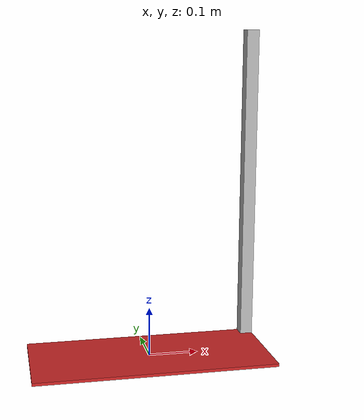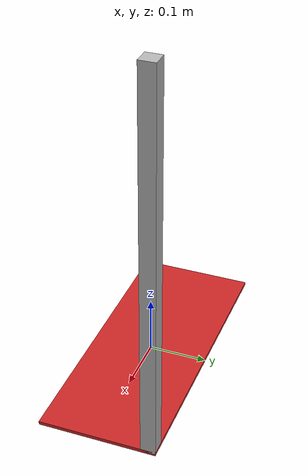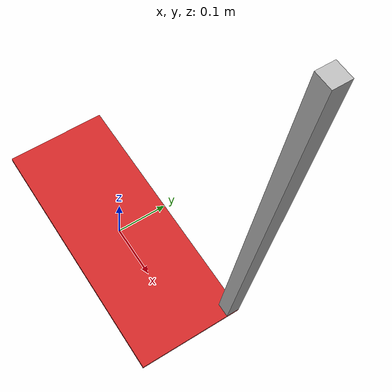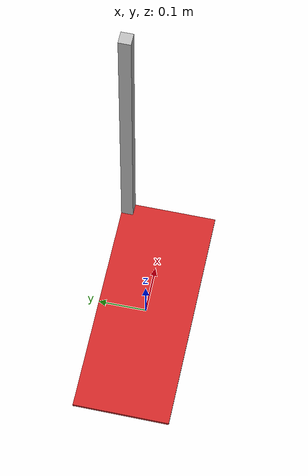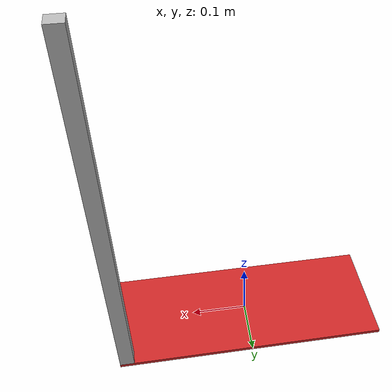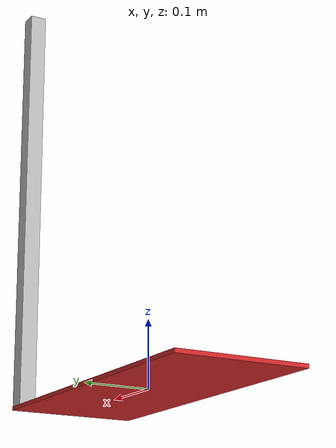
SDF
<sdf version='1.4'>
  <model name='first'>
    <link name='rack_base_link'>
      <pose>0 0 0 0 -0 0</pose>
      <inertial>
        <pose>0.11465 0.04365 0.1625 0 -0 0</pose>
        <mass>4</mass>
        <inertia>
          <ixx>0.13807</ixx>
          <ixy>-0.0214414</ixy>
          <ixz>-0.073517</ixz>
          <iyy>0.18864</iyy>
          <iyz>-0.028381</iyz>
          <izz>0.0837277</izz>
        </inertia>
      </inertial>
      <collision name='rack_base_link_collision'>
        <pose>0 0 0 0 -0 0</pose>
        <geometry>
          <box>
            <size>0.484 0.2 0.006</size>
          </box>
        </geometry>
      </collision>
      <collision name='rack_base_link_collision_rack_vertical_link'>
        <pose>0.2293 0.0873 0.325 0 -0 0</pose>
        <geometry>
          <box>
            <size>0.0254 0.0254 0.65</size>
          </box>
        </geometry>
      </collision>
      <visual name='rack_base_link_visual'>
        <pose>0 0 0 0 -0 0</pose>
        <geometry>
          <box>
            <size>0.484 0.2 0.006</size>
          </box>
        </geometry>
        <material>
          <script>
            <name>Gazebo/Red</name>
            <uri>__default__</uri>
          </script>
        </material>
        <material>
          <script>
            <name>Gazebo/Red</name>
            <uri>__default__</uri>
          </script>
        </material>
      </visual>
      <visual name='rack_base_link_visual_rack_vertical_link'>
        <pose>0.2293 0.0873 0.325 0 -0 0</pose>
        <geometry>
          <box>
            <size>0.0254 0.0254 0.65</size>
          </box>
        </geometry>
      </visual>
      <velocity_decay>
        <linear>0</linear>
        <angular>0</angular>
      </velocity_decay>
    </link>
    <plugin name='base_controller' filename='libgazebo_ros_planar_move.so'>
      <commandTopic>cmd_vel</commandTopic>
      <odometryTopic>odom</odometryTopic>
      <odometryFrame>odom</odometryFrame>
      <odometryRate>100.0</odometryRate>
      <robotBaseFrame>base_link</robotBaseFrame>
    </plugin>
    <static>0</static>
    <plugin name='base_controller' filename='libgazebo_ros_planar_move.so'>
      <commandTopic>cmd_vel</commandTopic>
      <odometryTopic>odom</odometryTopic>
      <odometryFrame>odom</odometryFrame>
      <odometryRate>100.0</odometryRate>
      <robotBaseFrame>base_link</robotBaseFrame>
    </plugin>
  </model>
</sdf>
